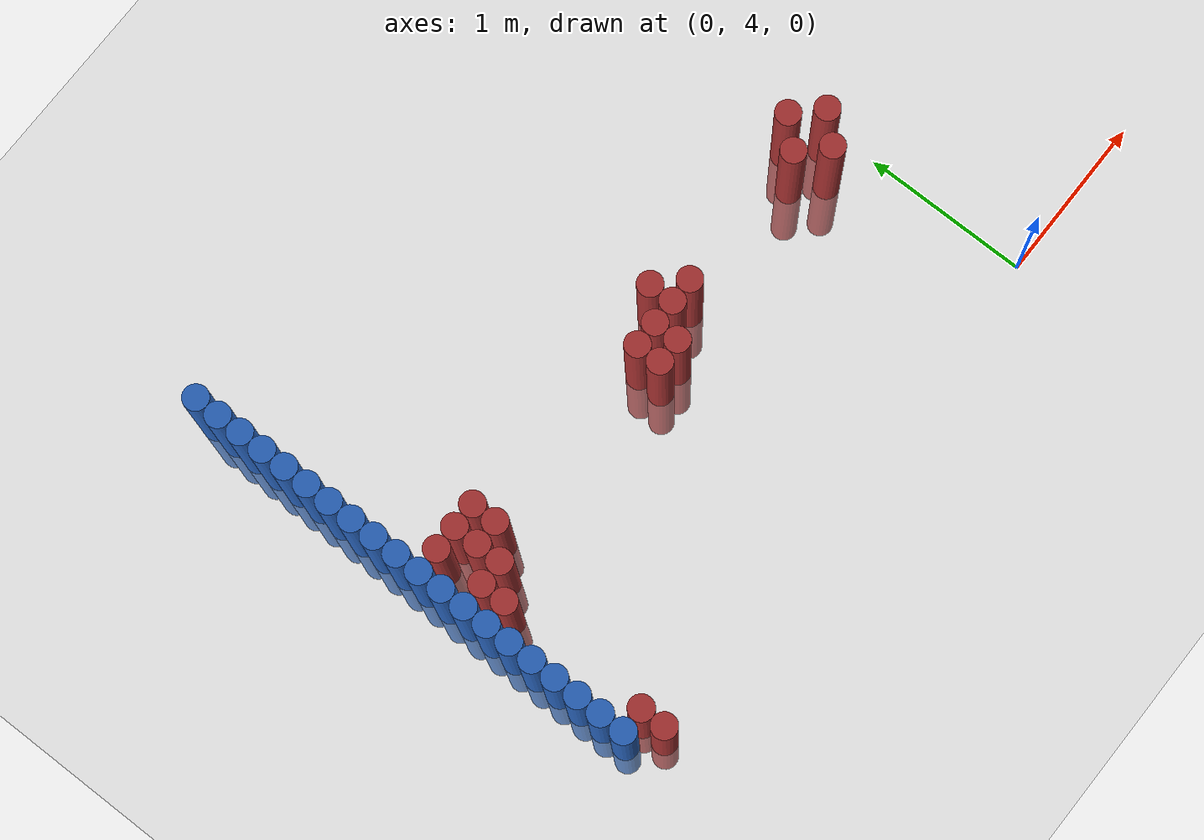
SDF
<sdf version="1.6">
 <world name="default">
  <model name="ground_plane">
   <static>1</static>
   <link name="link">
    <collision name="collision">
     <geometry><plane><normal>0 0 1</normal><size>100 100</size></plane></geometry>
     <surface><friction><ode><mu>100</mu><mu2>50</mu2></ode></friction></surface>
    </collision>
    <visual name="visual">
     <cast_shadows>0</cast_shadows>
     <geometry><plane><normal>0 0 1</normal><size>100 100</size></plane></geometry>
     <material>
      <script><uri>file://media/materials/scripts/gazebo.material</uri><name>Gazebo/Grey</name></script>
     </material>
    </visual>
   </link>
  </model>
  <model name="unit_cylinder_169">
   <static>1</static>
   <pose>-3.425000 4.075000 0.000000 0.000000 0.000000 0.000000</pose>
   <link name="link">
    <inertial>
     <mass>1</mass>
     <inertia><ixx>0.145833</ixx><ixy>0</ixy><ixz>0</ixz><iyy>0.145833</iyy><iyz>0</iyz><izz>0.125</izz></inertia>
    </inertial>
    <collision name="collision">
     <geometry><cylinder><radius>0.075000</radius><length>1.5</length></cylinder></geometry>
    </collision>
    <visual name="visual">
     <geometry><cylinder><radius>0.075000</radius><length>1.5</length></cylinder></geometry>
     <material>
      <ambient>0.152000 0.379000 0.720000 1</ambient>
      <diffuse>0.152000 0.379000 0.720000 1</diffuse>
     </material>
     <material>
      <script><name>Gazebo/Grey</name><uri>file://media/materials/scripts/gazebo.material</uri></script>
     </material>
    </visual>
   </link>
  </model>
  <model name="unit_cylinder_171">
   <static>1</static>
   <pose>-3.425000 4.225000 0.000000 0.000000 0.000000 0.000000</pose>
   <link name="link">
    <inertial>
     <mass>1</mass>
     <inertia><ixx>0.145833</ixx><ixy>0</ixy><ixz>0</ixz><iyy>0.145833</iyy><iyz>0</iyz><izz>0.125</izz></inertia>
    </inertial>
    <collision name="collision">
     <geometry><cylinder><radius>0.075000</radius><length>1.5</length></cylinder></geometry>
    </collision>
    <visual name="visual">
     <geometry><cylinder><radius>0.075000</radius><length>1.5</length></cylinder></geometry>
     <material>
      <ambient>0.152000 0.379000 0.720000 1</ambient>
      <diffuse>0.152000 0.379000 0.720000 1</diffuse>
     </material>
     <material>
      <script><name>Gazebo/Grey</name><uri>file://media/materials/scripts/gazebo.material</uri></script>
     </material>
    </visual>
   </link>
  </model>
  <model name="unit_cylinder_173">
   <static>1</static>
   <pose>-3.425000 4.375000 0.000000 0.000000 0.000000 0.000000</pose>
   <link name="link">
    <inertial>
     <mass>1</mass>
     <inertia><ixx>0.145833</ixx><ixy>0</ixy><ixz>0</ixz><iyy>0.145833</iyy><iyz>0</iyz><izz>0.125</izz></inertia>
    </inertial>
    <collision name="collision">
     <geometry><cylinder><radius>0.075000</radius><length>1.5</length></cylinder></geometry>
    </collision>
    <visual name="visual">
     <geometry><cylinder><radius>0.075000</radius><length>1.5</length></cylinder></geometry>
     <material>
      <ambient>0.152000 0.379000 0.720000 1</ambient>
      <diffuse>0.152000 0.379000 0.720000 1</diffuse>
     </material>
     <material>
      <script><name>Gazebo/Grey</name><uri>file://media/materials/scripts/gazebo.material</uri></script>
     </material>
    </visual>
   </link>
  </model>
  <model name="unit_cylinder_175">
   <static>1</static>
   <pose>-3.425000 4.525000 0.000000 0.000000 0.000000 0.000000</pose>
   <link name="link">
    <inertial>
     <mass>1</mass>
     <inertia><ixx>0.145833</ixx><ixy>0</ixy><ixz>0</ixz><iyy>0.145833</iyy><iyz>0</iyz><izz>0.125</izz></inertia>
    </inertial>
    <collision name="collision">
     <geometry><cylinder><radius>0.075000</radius><length>1.5</length></cylinder></geometry>
    </collision>
    <visual name="visual">
     <geometry><cylinder><radius>0.075000</radius><length>1.5</length></cylinder></geometry>
     <material>
      <ambient>0.152000 0.379000 0.720000 1</ambient>
      <diffuse>0.152000 0.379000 0.720000 1</diffuse>
     </material>
     <material>
      <script><name>Gazebo/Grey</name><uri>file://media/materials/scripts/gazebo.material</uri></script>
     </material>
    </visual>
   </link>
  </model>
  <model name="unit_cylinder_177">
   <static>1</static>
   <pose>-3.425000 4.675000 0.000000 0.000000 0.000000 0.000000</pose>
   <link name="link">
    <inertial>
     <mass>1</mass>
     <inertia><ixx>0.145833</ixx><ixy>0</ixy><ixz>0</ixz><iyy>0.145833</iyy><iyz>0</iyz><izz>0.125</izz></inertia>
    </inertial>
    <collision name="collision">
     <geometry><cylinder><radius>0.075000</radius><length>1.5</length></cylinder></geometry>
    </collision>
    <visual name="visual">
     <geometry><cylinder><radius>0.075000</radius><length>1.5</length></cylinder></geometry>
     <material>
      <ambient>0.152000 0.379000 0.720000 1</ambient>
      <diffuse>0.152000 0.379000 0.720000 1</diffuse>
     </material>
     <material>
      <script><name>Gazebo/Grey</name><uri>file://media/materials/scripts/gazebo.material</uri></script>
     </material>
    </visual>
   </link>
  </model>
  <model name="unit_cylinder_179">
   <static>1</static>
   <pose>-3.425000 4.825000 0.000000 0.000000 0.000000 0.000000</pose>
   <link name="link">
    <inertial>
     <mass>1</mass>
     <inertia><ixx>0.145833</ixx><ixy>0</ixy><ixz>0</ixz><iyy>0.145833</iyy><iyz>0</iyz><izz>0.125</izz></inertia>
    </inertial>
    <collision name="collision">
     <geometry><cylinder><radius>0.075000</radius><length>1.5</length></cylinder></geometry>
    </collision>
    <visual name="visual">
     <geometry><cylinder><radius>0.075000</radius><length>1.5</length></cylinder></geometry>
     <material>
      <ambient>0.152000 0.379000 0.720000 1</ambient>
      <diffuse>0.152000 0.379000 0.720000 1</diffuse>
     </material>
     <material>
      <script><name>Gazebo/Grey</name><uri>file://media/materials/scripts/gazebo.material</uri></script>
     </material>
    </visual>
   </link>
  </model>
  <model name="unit_cylinder_181">
   <static>1</static>
   <pose>-3.425000 4.975000 0.000000 0.000000 0.000000 0.000000</pose>
   <link name="link">
    <inertial>
     <mass>1</mass>
     <inertia><ixx>0.145833</ixx><ixy>0</ixy><ixz>0</ixz><iyy>0.145833</iyy><iyz>0</iyz><izz>0.125</izz></inertia>
    </inertial>
    <collision name="collision">
     <geometry><cylinder><radius>0.075000</radius><length>1.5</length></cylinder></geometry>
    </collision>
    <visual name="visual">
     <geometry><cylinder><radius>0.075000</radius><length>1.5</length></cylinder></geometry>
     <material>
      <ambient>0.152000 0.379000 0.720000 1</ambient>
      <diffuse>0.152000 0.379000 0.720000 1</diffuse>
     </material>
     <material>
      <script><name>Gazebo/Grey</name><uri>file://media/materials/scripts/gazebo.material</uri></script>
     </material>
    </visual>
   </link>
  </model>
  <model name="unit_cylinder_183">
   <static>1</static>
   <pose>-3.425000 5.125000 0.000000 0.000000 0.000000 0.000000</pose>
   <link name="link">
    <inertial>
     <mass>1</mass>
     <inertia><ixx>0.145833</ixx><ixy>0</ixy><ixz>0</ixz><iyy>0.145833</iyy><iyz>0</iyz><izz>0.125</izz></inertia>
    </inertial>
    <collision name="collision">
     <geometry><cylinder><radius>0.075000</radius><length>1.5</length></cylinder></geometry>
    </collision>
    <visual name="visual">
     <geometry><cylinder><radius>0.075000</radius><length>1.5</length></cylinder></geometry>
     <material>
      <ambient>0.152000 0.379000 0.720000 1</ambient>
      <diffuse>0.152000 0.379000 0.720000 1</diffuse>
     </material>
     <material>
      <script><name>Gazebo/Grey</name><uri>file://media/materials/scripts/gazebo.material</uri></script>
     </material>
    </visual>
   </link>
  </model>
  <model name="unit_cylinder_185">
   <static>1</static>
   <pose>-3.425000 5.275000 0.000000 0.000000 0.000000 0.000000</pose>
   <link name="link">
    <inertial>
     <mass>1</mass>
     <inertia><ixx>0.145833</ixx><ixy>0</ixy><ixz>0</ixz><iyy>0.145833</iyy><iyz>0</iyz><izz>0.125</izz></inertia>
    </inertial>
    <collision name="collision">
     <geometry><cylinder><radius>0.075000</radius><length>1.5</length></cylinder></geometry>
    </collision>
    <visual name="visual">
     <geometry><cylinder><radius>0.075000</radius><length>1.5</length></cylinder></geometry>
     <material>
      <ambient>0.152000 0.379000 0.720000 1</ambient>
      <diffuse>0.152000 0.379000 0.720000 1</diffuse>
     </material>
     <material>
      <script><name>Gazebo/Grey</name><uri>file://media/materials/scripts/gazebo.material</uri></script>
     </material>
    </visual>
   </link>
  </model>
  <model name="unit_cylinder_187">
   <static>1</static>
   <pose>-3.425000 5.425000 0.000000 0.000000 0.000000 0.000000</pose>
   <link name="link">
    <inertial>
     <mass>1</mass>
     <inertia><ixx>0.145833</ixx><ixy>0</ixy><ixz>0</ixz><iyy>0.145833</iyy><iyz>0</iyz><izz>0.125</izz></inertia>
    </inertial>
    <collision name="collision">
     <geometry><cylinder><radius>0.075000</radius><length>1.5</length></cylinder></geometry>
    </collision>
    <visual name="visual">
     <geometry><cylinder><radius>0.075000</radius><length>1.5</length></cylinder></geometry>
     <material>
      <ambient>0.152000 0.379000 0.720000 1</ambient>
      <diffuse>0.152000 0.379000 0.720000 1</diffuse>
     </material>
     <material>
      <script><name>Gazebo/Grey</name><uri>file://media/materials/scripts/gazebo.material</uri></script>
     </material>
    </visual>
   </link>
  </model>
  <model name="unit_cylinder_189">
   <static>1</static>
   <pose>-3.425000 5.575000 0.000000 0.000000 0.000000 0.000000</pose>
   <link name="link">
    <inertial>
     <mass>1</mass>
     <inertia><ixx>0.145833</ixx><ixy>0</ixy><ixz>0</ixz><iyy>0.145833</iyy><iyz>0</iyz><izz>0.125</izz></inertia>
    </inertial>
    <collision name="collision">
     <geometry><cylinder><radius>0.075000</radius><length>1.5</length></cylinder></geometry>
    </collision>
    <visual name="visual">
     <geometry><cylinder><radius>0.075000</radius><length>1.5</length></cylinder></geometry>
     <material>
      <ambient>0.152000 0.379000 0.720000 1</ambient>
      <diffuse>0.152000 0.379000 0.720000 1</diffuse>
     </material>
     <material>
      <script><name>Gazebo/Grey</name><uri>file://media/materials/scripts/gazebo.material</uri></script>
     </material>
    </visual>
   </link>
  </model>
  <model name="unit_cylinder_191">
   <static>1</static>
   <pose>-3.425000 5.725000 0.000000 0.000000 0.000000 0.000000</pose>
   <link name="link">
    <inertial>
     <mass>1</mass>
     <inertia><ixx>0.145833</ixx><ixy>0</ixy><ixz>0</ixz><iyy>0.145833</iyy><iyz>0</iyz><izz>0.125</izz></inertia>
    </inertial>
    <collision name="collision">
     <geometry><cylinder><radius>0.075000</radius><length>1.5</length></cylinder></geometry>
    </collision>
    <visual name="visual">
     <geometry><cylinder><radius>0.075000</radius><length>1.5</length></cylinder></geometry>
     <material>
      <ambient>0.152000 0.379000 0.720000 1</ambient>
      <diffuse>0.152000 0.379000 0.720000 1</diffuse>
     </material>
     <material>
      <script><name>Gazebo/Grey</name><uri>file://media/materials/scripts/gazebo.material</uri></script>
     </material>
    </visual>
   </link>
  </model>
  <model name="unit_cylinder_193">
   <static>1</static>
   <pose>-3.425000 5.875000 0.000000 0.000000 0.000000 0.000000</pose>
   <link name="link">
    <inertial>
     <mass>1</mass>
     <inertia><ixx>0.145833</ixx><ixy>0</ixy><ixz>0</ixz><iyy>0.145833</iyy><iyz>0</iyz><izz>0.125</izz></inertia>
    </inertial>
    <collision name="collision">
     <geometry><cylinder><radius>0.075000</radius><length>1.5</length></cylinder></geometry>
    </collision>
    <visual name="visual">
     <geometry><cylinder><radius>0.075000</radius><length>1.5</length></cylinder></geometry>
     <material>
      <ambient>0.152000 0.379000 0.720000 1</ambient>
      <diffuse>0.152000 0.379000 0.720000 1</diffuse>
     </material>
     <material>
      <script><name>Gazebo/Grey</name><uri>file://media/materials/scripts/gazebo.material</uri></script>
     </material>
    </visual>
   </link>
  </model>
  <model name="unit_cylinder_195">
   <static>1</static>
   <pose>-3.425000 6.025000 0.000000 0.000000 0.000000 0.000000</pose>
   <link name="link">
    <inertial>
     <mass>1</mass>
     <inertia><ixx>0.145833</ixx><ixy>0</ixy><ixz>0</ixz><iyy>0.145833</iyy><iyz>0</iyz><izz>0.125</izz></inertia>
    </inertial>
    <collision name="collision">
     <geometry><cylinder><radius>0.075000</radius><length>1.5</length></cylinder></geometry>
    </collision>
    <visual name="visual">
     <geometry><cylinder><radius>0.075000</radius><length>1.5</length></cylinder></geometry>
     <material>
      <ambient>0.152000 0.379000 0.720000 1</ambient>
      <diffuse>0.152000 0.379000 0.720000 1</diffuse>
     </material>
     <material>
      <script><name>Gazebo/Grey</name><uri>file://media/materials/scripts/gazebo.material</uri></script>
     </material>
    </visual>
   </link>
  </model>
  <model name="unit_cylinder_197">
   <static>1</static>
   <pose>-3.425000 6.175000 0.000000 0.000000 0.000000 0.000000</pose>
   <link name="link">
    <inertial>
     <mass>1</mass>
     <inertia><ixx>0.145833</ixx><ixy>0</ixy><ixz>0</ixz><iyy>0.145833</iyy><iyz>0</iyz><izz>0.125</izz></inertia>
    </inertial>
    <collision name="collision">
     <geometry><cylinder><radius>0.075000</radius><length>1.5</length></cylinder></geometry>
    </collision>
    <visual name="visual">
     <geometry><cylinder><radius>0.075000</radius><length>1.5</length></cylinder></geometry>
     <material>
      <ambient>0.152000 0.379000 0.720000 1</ambient>
      <diffuse>0.152000 0.379000 0.720000 1</diffuse>
     </material>
     <material>
      <script><name>Gazebo/Grey</name><uri>file://media/materials/scripts/gazebo.material</uri></script>
     </material>
    </visual>
   </link>
  </model>
  <model name="unit_cylinder_199">
   <static>1</static>
   <pose>-3.425000 6.325000 0.000000 0.000000 0.000000 0.000000</pose>
   <link name="link">
    <inertial>
     <mass>1</mass>
     <inertia><ixx>0.145833</ixx><ixy>0</ixy><ixz>0</ixz><iyy>0.145833</iyy><iyz>0</iyz><izz>0.125</izz></inertia>
    </inertial>
    <collision name="collision">
     <geometry><cylinder><radius>0.075000</radius><length>1.5</length></cylinder></geometry>
    </collision>
    <visual name="visual">
     <geometry><cylinder><radius>0.075000</radius><length>1.5</length></cylinder></geometry>
     <material>
      <ambient>0.152000 0.379000 0.720000 1</ambient>
      <diffuse>0.152000 0.379000 0.720000 1</diffuse>
     </material>
     <material>
      <script><name>Gazebo/Grey</name><uri>file://media/materials/scripts/gazebo.material</uri></script>
     </material>
    </visual>
   </link>
  </model>
  <model name="unit_cylinder_201">
   <static>1</static>
   <pose>-3.425000 6.475000 0.000000 0.000000 0.000000 0.000000</pose>
   <link name="link">
    <inertial>
     <mass>1</mass>
     <inertia><ixx>0.145833</ixx><ixy>0</ixy><ixz>0</ixz><iyy>0.145833</iyy><iyz>0</iyz><izz>0.125</izz></inertia>
    </inertial>
    <collision name="collision">
     <geometry><cylinder><radius>0.075000</radius><length>1.5</length></cylinder></geometry>
    </collision>
    <visual name="visual">
     <geometry><cylinder><radius>0.075000</radius><length>1.5</length></cylinder></geometry>
     <material>
      <ambient>0.152000 0.379000 0.720000 1</ambient>
      <diffuse>0.152000 0.379000 0.720000 1</diffuse>
     </material>
     <material>
      <script><name>Gazebo/Grey</name><uri>file://media/materials/scripts/gazebo.material</uri></script>
     </material>
    </visual>
   </link>
  </model>
  <model name="unit_cylinder_203">
   <static>1</static>
   <pose>-3.425000 6.625000 0.000000 0.000000 0.000000 0.000000</pose>
   <link name="link">
    <inertial>
     <mass>1</mass>
     <inertia><ixx>0.145833</ixx><ixy>0</ixy><ixz>0</ixz><iyy>0.145833</iyy><iyz>0</iyz><izz>0.125</izz></inertia>
    </inertial>
    <collision name="collision">
     <geometry><cylinder><radius>0.075000</radius><length>1.5</length></cylinder></geometry>
    </collision>
    <visual name="visual">
     <geometry><cylinder><radius>0.075000</radius><length>1.5</length></cylinder></geometry>
     <material>
      <ambient>0.152000 0.379000 0.720000 1</ambient>
      <diffuse>0.152000 0.379000 0.720000 1</diffuse>
     </material>
     <material>
      <script><name>Gazebo/Grey</name><uri>file://media/materials/scripts/gazebo.material</uri></script>
     </material>
    </visual>
   </link>
  </model>
  <model name="unit_cylinder_205">
   <static>1</static>
   <pose>-3.425000 6.775000 0.000000 0.000000 0.000000 0.000000</pose>
   <link name="link">
    <inertial>
     <mass>1</mass>
     <inertia><ixx>0.145833</ixx><ixy>0</ixy><ixz>0</ixz><iyy>0.145833</iyy><iyz>0</iyz><izz>0.125</izz></inertia>
    </inertial>
    <collision name="collision">
     <geometry><cylinder><radius>0.075000</radius><length>1.5</length></cylinder></geometry>
    </collision>
    <visual name="visual">
     <geometry><cylinder><radius>0.075000</radius><length>1.5</length></cylinder></geometry>
     <material>
      <ambient>0.152000 0.379000 0.720000 1</ambient>
      <diffuse>0.152000 0.379000 0.720000 1</diffuse>
     </material>
     <material>
      <script><name>Gazebo/Grey</name><uri>file://media/materials/scripts/gazebo.material</uri></script>
     </material>
    </visual>
   </link>
  </model>
  <model name="unit_cylinder_207">
   <static>1</static>
   <pose>-3.425000 6.925000 0.000000 0.000000 0.000000 0.000000</pose>
   <link name="link">
    <inertial>
     <mass>1</mass>
     <inertia><ixx>0.145833</ixx><ixy>0</ixy><ixz>0</ixz><iyy>0.145833</iyy><iyz>0</iyz><izz>0.125</izz></inertia>
    </inertial>
    <collision name="collision">
     <geometry><cylinder><radius>0.075000</radius><length>1.5</length></cylinder></geometry>
    </collision>
    <visual name="visual">
     <geometry><cylinder><radius>0.075000</radius><length>1.5</length></cylinder></geometry>
     <material>
      <ambient>0.152000 0.379000 0.720000 1</ambient>
      <diffuse>0.152000 0.379000 0.720000 1</diffuse>
     </material>
     <material>
      <script><name>Gazebo/Grey</name><uri>file://media/materials/scripts/gazebo.material</uri></script>
     </material>
    </visual>
   </link>
  </model>
  <model name="unit_cylinder_248">
   <static>1</static>
   <pose>-3.425000 4.075000 0.000000 0.000000 0.000000 0.000000</pose>
   <link name="link">
    <inertial>
     <mass>1</mass>
     <inertia><ixx>0.145833</ixx><ixy>0</ixy><ixz>0</ixz><iyy>0.145833</iyy><iyz>0</iyz><izz>0.125</izz></inertia>
    </inertial>
    <collision name="collision">
     <geometry><cylinder><radius>0.075000</radius><length>1.5</length></cylinder></geometry>
    </collision>
    <visual name="visual">
     <geometry><cylinder><radius>0.075000</radius><length>1.5</length></cylinder></geometry>
     <material>
      <ambient>0.152000 0.379000 0.720000 1</ambient>
      <diffuse>0.152000 0.379000 0.720000 1</diffuse>
     </material>
     <material>
      <script><name>Gazebo/Grey</name><uri>file://media/materials/scripts/gazebo.material</uri></script>
     </material>
    </visual>
   </link>
  </model>
  <model name="unit_cylinder_249">
   <static>1</static>
   <pose>-3.425000 4.225000 0.000000 0.000000 0.000000 0.000000</pose>
   <link name="link">
    <inertial>
     <mass>1</mass>
     <inertia><ixx>0.145833</ixx><ixy>0</ixy><ixz>0</ixz><iyy>0.145833</iyy><iyz>0</iyz><izz>0.125</izz></inertia>
    </inertial>
    <collision name="collision">
     <geometry><cylinder><radius>0.075000</radius><length>1.5</length></cylinder></geometry>
    </collision>
    <visual name="visual">
     <geometry><cylinder><radius>0.075000</radius><length>1.5</length></cylinder></geometry>
     <material>
      <ambient>0.152000 0.379000 0.720000 1</ambient>
      <diffuse>0.152000 0.379000 0.720000 1</diffuse>
     </material>
     <material>
      <script><name>Gazebo/Grey</name><uri>file://media/materials/scripts/gazebo.material</uri></script>
     </material>
    </visual>
   </link>
  </model>
  <model name="unit_cylinder_250">
   <static>1</static>
   <pose>-3.425000 4.375000 0.000000 0.000000 0.000000 0.000000</pose>
   <link name="link">
    <inertial>
     <mass>1</mass>
     <inertia><ixx>0.145833</ixx><ixy>0</ixy><ixz>0</ixz><iyy>0.145833</iyy><iyz>0</iyz><izz>0.125</izz></inertia>
    </inertial>
    <collision name="collision">
     <geometry><cylinder><radius>0.075000</radius><length>1.5</length></cylinder></geometry>
    </collision>
    <visual name="visual">
     <geometry><cylinder><radius>0.075000</radius><length>1.5</length></cylinder></geometry>
     <material>
      <ambient>0.152000 0.379000 0.720000 1</ambient>
      <diffuse>0.152000 0.379000 0.720000 1</diffuse>
     </material>
     <material>
      <script><name>Gazebo/Grey</name><uri>file://media/materials/scripts/gazebo.material</uri></script>
     </material>
    </visual>
   </link>
  </model>
  <model name="unit_cylinder_251">
   <static>1</static>
   <pose>-3.425000 4.525000 0.000000 0.000000 0.000000 0.000000</pose>
   <link name="link">
    <inertial>
     <mass>1</mass>
     <inertia><ixx>0.145833</ixx><ixy>0</ixy><ixz>0</ixz><iyy>0.145833</iyy><iyz>0</iyz><izz>0.125</izz></inertia>
    </inertial>
    <collision name="collision">
     <geometry><cylinder><radius>0.075000</radius><length>1.5</length></cylinder></geometry>
    </collision>
    <visual name="visual">
     <geometry><cylinder><radius>0.075000</radius><length>1.5</length></cylinder></geometry>
     <material>
      <ambient>0.152000 0.379000 0.720000 1</ambient>
      <diffuse>0.152000 0.379000 0.720000 1</diffuse>
     </material>
     <material>
      <script><name>Gazebo/Grey</name><uri>file://media/materials/scripts/gazebo.material</uri></script>
     </material>
    </visual>
   </link>
  </model>
  <model name="unit_cylinder_252">
   <static>1</static>
   <pose>-3.425000 4.675000 0.000000 0.000000 0.000000 0.000000</pose>
   <link name="link">
    <inertial>
     <mass>1</mass>
     <inertia><ixx>0.145833</ixx><ixy>0</ixy><ixz>0</ixz><iyy>0.145833</iyy><iyz>0</iyz><izz>0.125</izz></inertia>
    </inertial>
    <collision name="collision">
     <geometry><cylinder><radius>0.075000</radius><length>1.5</length></cylinder></geometry>
    </collision>
    <visual name="visual">
     <geometry><cylinder><radius>0.075000</radius><length>1.5</length></cylinder></geometry>
     <material>
      <ambient>0.152000 0.379000 0.720000 1</ambient>
      <diffuse>0.152000 0.379000 0.720000 1</diffuse>
     </material>
     <material>
      <script><name>Gazebo/Grey</name><uri>file://media/materials/scripts/gazebo.material</uri></script>
     </material>
    </visual>
   </link>
  </model>
  <model name="unit_cylinder_253">
   <static>1</static>
   <pose>-3.425000 4.825000 0.000000 0.000000 0.000000 0.000000</pose>
   <link name="link">
    <inertial>
     <mass>1</mass>
     <inertia><ixx>0.145833</ixx><ixy>0</ixy><ixz>0</ixz><iyy>0.145833</iyy><iyz>0</iyz><izz>0.125</izz></inertia>
    </inertial>
    <collision name="collision">
     <geometry><cylinder><radius>0.075000</radius><length>1.5</length></cylinder></geometry>
    </collision>
    <visual name="visual">
     <geometry><cylinder><radius>0.075000</radius><length>1.5</length></cylinder></geometry>
     <material>
      <ambient>0.152000 0.379000 0.720000 1</ambient>
      <diffuse>0.152000 0.379000 0.720000 1</diffuse>
     </material>
     <material>
      <script><name>Gazebo/Grey</name><uri>file://media/materials/scripts/gazebo.material</uri></script>
     </material>
    </visual>
   </link>
  </model>
  <model name="unit_cylinder_254">
   <static>1</static>
   <pose>-3.425000 4.975000 0.000000 0.000000 0.000000 0.000000</pose>
   <link name="link">
    <inertial>
     <mass>1</mass>
     <inertia><ixx>0.145833</ixx><ixy>0</ixy><ixz>0</ixz><iyy>0.145833</iyy><iyz>0</iyz><izz>0.125</izz></inertia>
    </inertial>
    <collision name="collision">
     <geometry><cylinder><radius>0.075000</radius><length>1.5</length></cylinder></geometry>
    </collision>
    <visual name="visual">
     <geometry><cylinder><radius>0.075000</radius><length>1.5</length></cylinder></geometry>
     <material>
      <ambient>0.152000 0.379000 0.720000 1</ambient>
      <diffuse>0.152000 0.379000 0.720000 1</diffuse>
     </material>
     <material>
      <script><name>Gazebo/Grey</name><uri>file://media/materials/scripts/gazebo.material</uri></script>
     </material>
    </visual>
   </link>
  </model>
  <model name="unit_cylinder_255">
   <static>1</static>
   <pose>-3.425000 5.125000 0.000000 0.000000 0.000000 0.000000</pose>
   <link name="link">
    <inertial>
     <mass>1</mass>
     <inertia><ixx>0.145833</ixx><ixy>0</ixy><ixz>0</ixz><iyy>0.145833</iyy><iyz>0</iyz><izz>0.125</izz></inertia>
    </inertial>
    <collision name="collision">
     <geometry><cylinder><radius>0.075000</radius><length>1.5</length></cylinder></geometry>
    </collision>
    <visual name="visual">
     <geometry><cylinder><radius>0.075000</radius><length>1.5</length></cylinder></geometry>
     <material>
      <ambient>0.152000 0.379000 0.720000 1</ambient>
      <diffuse>0.152000 0.379000 0.720000 1</diffuse>
     </material>
     <material>
      <script><name>Gazebo/Grey</name><uri>file://media/materials/scripts/gazebo.material</uri></script>
     </material>
    </visual>
   </link>
  </model>
  <model name="unit_cylinder_256">
   <static>1</static>
   <pose>-3.425000 5.275000 0.000000 0.000000 0.000000 0.000000</pose>
   <link name="link">
    <inertial>
     <mass>1</mass>
     <inertia><ixx>0.145833</ixx><ixy>0</ixy><ixz>0</ixz><iyy>0.145833</iyy><iyz>0</iyz><izz>0.125</izz></inertia>
    </inertial>
    <collision name="collision">
     <geometry><cylinder><radius>0.075000</radius><length>1.5</length></cylinder></geometry>
    </collision>
    <visual name="visual">
     <geometry><cylinder><radius>0.075000</radius><length>1.5</length></cylinder></geometry>
     <material>
      <ambient>0.152000 0.379000 0.720000 1</ambient>
      <diffuse>0.152000 0.379000 0.720000 1</diffuse>
     </material>
     <material>
      <script><name>Gazebo/Grey</name><uri>file://media/materials/scripts/gazebo.material</uri></script>
     </material>
    </visual>
   </link>
  </model>
  <model name="unit_cylinder_257">
   <static>1</static>
   <pose>-3.425000 5.425000 0.000000 0.000000 0.000000 0.000000</pose>
   <link name="link">
    <inertial>
     <mass>1</mass>
     <inertia><ixx>0.145833</ixx><ixy>0</ixy><ixz>0</ixz><iyy>0.145833</iyy><iyz>0</iyz><izz>0.125</izz></inertia>
    </inertial>
    <collision name="collision">
     <geometry><cylinder><radius>0.075000</radius><length>1.5</length></cylinder></geometry>
    </collision>
    <visual name="visual">
     <geometry><cylinder><radius>0.075000</radius><length>1.5</length></cylinder></geometry>
     <material>
      <ambient>0.152000 0.379000 0.720000 1</ambient>
      <diffuse>0.152000 0.379000 0.720000 1</diffuse>
     </material>
     <material>
      <script><name>Gazebo/Grey</name><uri>file://media/materials/scripts/gazebo.material</uri></script>
     </material>
    </visual>
   </link>
  </model>
  <model name="unit_cylinder_273">
   <static>1</static>
   <pose>-3.275000 3.925000 0.000000 0.000000 0.000000 0.000000</pose>
   <link name="link">
    <inertial>
     <mass>1</mass>
     <inertia><ixx>0.145833</ixx><ixy>0</ixy><ixz>0</ixz><iyy>0.145833</iyy><iyz>0</iyz><izz>0.125</izz></inertia>
    </inertial>
    <collision name="collision">
     <geometry><cylinder><radius>0.075000</radius><length>1.5</length></cylinder></geometry>
    </collision>
    <visual name="visual">
     <geometry><cylinder><radius>0.075000</radius><length>1.5</length></cylinder></geometry>
     <material>
      <ambient>0.648000 0.192000 0.192000 1</ambient>
      <diffuse>0.648000 0.192000 0.192000 1</diffuse>
     </material>
     <material>
      <script><name>Gazebo/Grey</name><uri>file://media/materials/scripts/gazebo.material</uri></script>
     </material>
    </visual>
   </link>
  </model>
  <model name="unit_cylinder_274">
   <static>1</static>
   <pose>-3.275000 4.075000 0.000000 0.000000 0.000000 0.000000</pose>
   <link name="link">
    <inertial>
     <mass>1</mass>
     <inertia><ixx>0.145833</ixx><ixy>0</ixy><ixz>0</ixz><iyy>0.145833</iyy><iyz>0</iyz><izz>0.125</izz></inertia>
    </inertial>
    <collision name="collision">
     <geometry><cylinder><radius>0.075000</radius><length>1.5</length></cylinder></geometry>
    </collision>
    <visual name="visual">
     <geometry><cylinder><radius>0.075000</radius><length>1.5</length></cylinder></geometry>
     <material>
      <ambient>0.648000 0.192000 0.192000 1</ambient>
      <diffuse>0.648000 0.192000 0.192000 1</diffuse>
     </material>
     <material>
      <script><name>Gazebo/Grey</name><uri>file://media/materials/scripts/gazebo.material</uri></script>
     </material>
    </visual>
   </link>
  </model>
  <model name="unit_cylinder_275">
   <static>1</static>
   <pose>-3.275000 4.975000 0.000000 0.000000 0.000000 0.000000</pose>
   <link name="link">
    <inertial>
     <mass>1</mass>
     <inertia><ixx>0.145833</ixx><ixy>0</ixy><ixz>0</ixz><iyy>0.145833</iyy><iyz>0</iyz><izz>0.125</izz></inertia>
    </inertial>
    <collision name="collision">
     <geometry><cylinder><radius>0.075000</radius><length>1.5</length></cylinder></geometry>
    </collision>
    <visual name="visual">
     <geometry><cylinder><radius>0.075000</radius><length>1.5</length></cylinder></geometry>
     <material>
      <ambient>0.648000 0.192000 0.192000 1</ambient>
      <diffuse>0.648000 0.192000 0.192000 1</diffuse>
     </material>
     <material>
      <script><name>Gazebo/Grey</name><uri>file://media/materials/scripts/gazebo.material</uri></script>
     </material>
    </visual>
   </link>
  </model>
  <model name="unit_cylinder_276">
   <static>1</static>
   <pose>-3.275000 5.125000 0.000000 0.000000 0.000000 0.000000</pose>
   <link name="link">
    <inertial>
     <mass>1</mass>
     <inertia><ixx>0.145833</ixx><ixy>0</ixy><ixz>0</ixz><iyy>0.145833</iyy><iyz>0</iyz><izz>0.125</izz></inertia>
    </inertial>
    <collision name="collision">
     <geometry><cylinder><radius>0.075000</radius><length>1.5</length></cylinder></geometry>
    </collision>
    <visual name="visual">
     <geometry><cylinder><radius>0.075000</radius><length>1.5</length></cylinder></geometry>
     <material>
      <ambient>0.648000 0.192000 0.192000 1</ambient>
      <diffuse>0.648000 0.192000 0.192000 1</diffuse>
     </material>
     <material>
      <script><name>Gazebo/Grey</name><uri>file://media/materials/scripts/gazebo.material</uri></script>
     </material>
    </visual>
   </link>
  </model>
  <model name="unit_cylinder_277">
   <static>1</static>
   <pose>-3.275000 5.425000 0.000000 0.000000 0.000000 0.000000</pose>
   <link name="link">
    <inertial>
     <mass>1</mass>
     <inertia><ixx>0.145833</ixx><ixy>0</ixy><ixz>0</ixz><iyy>0.145833</iyy><iyz>0</iyz><izz>0.125</izz></inertia>
    </inertial>
    <collision name="collision">
     <geometry><cylinder><radius>0.075000</radius><length>1.5</length></cylinder></geometry>
    </collision>
    <visual name="visual">
     <geometry><cylinder><radius>0.075000</radius><length>1.5</length></cylinder></geometry>
     <material>
      <ambient>0.648000 0.192000 0.192000 1</ambient>
      <diffuse>0.648000 0.192000 0.192000 1</diffuse>
     </material>
     <material>
      <script><name>Gazebo/Grey</name><uri>file://media/materials/scripts/gazebo.material</uri></script>
     </material>
    </visual>
   </link>
  </model>
  <model name="unit_cylinder_280">
   <static>1</static>
   <pose>-3.125000 5.125000 0.000000 0.000000 0.000000 0.000000</pose>
   <link name="link">
    <inertial>
     <mass>1</mass>
     <inertia><ixx>0.145833</ixx><ixy>0</ixy><ixz>0</ixz><iyy>0.145833</iyy><iyz>0</iyz><izz>0.125</izz></inertia>
    </inertial>
    <collision name="collision">
     <geometry><cylinder><radius>0.075000</radius><length>1.5</length></cylinder></geometry>
    </collision>
    <visual name="visual">
     <geometry><cylinder><radius>0.075000</radius><length>1.5</length></cylinder></geometry>
     <material>
      <ambient>0.648000 0.192000 0.192000 1</ambient>
      <diffuse>0.648000 0.192000 0.192000 1</diffuse>
     </material>
     <material>
      <script><name>Gazebo/Grey</name><uri>file://media/materials/scripts/gazebo.material</uri></script>
     </material>
    </visual>
   </link>
  </model>
  <model name="unit_cylinder_281">
   <static>1</static>
   <pose>-3.125000 5.275000 0.000000 0.000000 0.000000 0.000000</pose>
   <link name="link">
    <inertial>
     <mass>1</mass>
     <inertia><ixx>0.145833</ixx><ixy>0</ixy><ixz>0</ixz><iyy>0.145833</iyy><iyz>0</iyz><izz>0.125</izz></inertia>
    </inertial>
    <collision name="collision">
     <geometry><cylinder><radius>0.075000</radius><length>1.5</length></cylinder></geometry>
    </collision>
    <visual name="visual">
     <geometry><cylinder><radius>0.075000</radius><length>1.5</length></cylinder></geometry>
     <material>
      <ambient>0.648000 0.192000 0.192000 1</ambient>
      <diffuse>0.648000 0.192000 0.192000 1</diffuse>
     </material>
     <material>
      <script><name>Gazebo/Grey</name><uri>file://media/materials/scripts/gazebo.material</uri></script>
     </material>
    </visual>
   </link>
  </model>
  <model name="unit_cylinder_282">
   <static>1</static>
   <pose>-3.125000 5.425000 0.000000 0.000000 0.000000 0.000000</pose>
   <link name="link">
    <inertial>
     <mass>1</mass>
     <inertia><ixx>0.145833</ixx><ixy>0</ixy><ixz>0</ixz><iyy>0.145833</iyy><iyz>0</iyz><izz>0.125</izz></inertia>
    </inertial>
    <collision name="collision">
     <geometry><cylinder><radius>0.075000</radius><length>1.5</length></cylinder></geometry>
    </collision>
    <visual name="visual">
     <geometry><cylinder><radius>0.075000</radius><length>1.5</length></cylinder></geometry>
     <material>
      <ambient>0.648000 0.192000 0.192000 1</ambient>
      <diffuse>0.648000 0.192000 0.192000 1</diffuse>
     </material>
     <material>
      <script><name>Gazebo/Grey</name><uri>file://media/materials/scripts/gazebo.material</uri></script>
     </material>
    </visual>
   </link>
  </model>
  <model name="unit_cylinder_286">
   <static>1</static>
   <pose>-2.975000 5.275000 0.000000 0.000000 0.000000 0.000000</pose>
   <link name="link">
    <inertial>
     <mass>1</mass>
     <inertia><ixx>0.145833</ixx><ixy>0</ixy><ixz>0</ixz><iyy>0.145833</iyy><iyz>0</iyz><izz>0.125</izz></inertia>
    </inertial>
    <collision name="collision">
     <geometry><cylinder><radius>0.075000</radius><length>1.5</length></cylinder></geometry>
    </collision>
    <visual name="visual">
     <geometry><cylinder><radius>0.075000</radius><length>1.5</length></cylinder></geometry>
     <material>
      <ambient>0.648000 0.192000 0.192000 1</ambient>
      <diffuse>0.648000 0.192000 0.192000 1</diffuse>
     </material>
     <material>
      <script><name>Gazebo/Grey</name><uri>file://media/materials/scripts/gazebo.material</uri></script>
     </material>
    </visual>
   </link>
  </model>
  <model name="unit_cylinder_287">
   <static>1</static>
   <pose>-2.975000 5.425000 0.000000 0.000000 0.000000 0.000000</pose>
   <link name="link">
    <inertial>
     <mass>1</mass>
     <inertia><ixx>0.145833</ixx><ixy>0</ixy><ixz>0</ixz><iyy>0.145833</iyy><iyz>0</iyz><izz>0.125</izz></inertia>
    </inertial>
    <collision name="collision">
     <geometry><cylinder><radius>0.075000</radius><length>1.5</length></cylinder></geometry>
    </collision>
    <visual name="visual">
     <geometry><cylinder><radius>0.075000</radius><length>1.5</length></cylinder></geometry>
     <material>
      <ambient>0.648000 0.192000 0.192000 1</ambient>
      <diffuse>0.648000 0.192000 0.192000 1</diffuse>
     </material>
     <material>
      <script><name>Gazebo/Grey</name><uri>file://media/materials/scripts/gazebo.material</uri></script>
     </material>
    </visual>
   </link>
  </model>
  <model name="unit_cylinder_305">
   <static>1</static>
   <pose>-1.775000 5.125000 0.000000 0.000000 0.000000 0.000000</pose>
   <link name="link">
    <inertial>
     <mass>1</mass>
     <inertia><ixx>0.145833</ixx><ixy>0</ixy><ixz>0</ixz><iyy>0.145833</iyy><iyz>0</iyz><izz>0.125</izz></inertia>
    </inertial>
    <collision name="collision">
     <geometry><cylinder><radius>0.075000</radius><length>1.5</length></cylinder></geometry>
    </collision>
    <visual name="visual">
     <geometry><cylinder><radius>0.075000</radius><length>1.5</length></cylinder></geometry>
     <material>
      <ambient>0.648000 0.192000 0.192000 1</ambient>
      <diffuse>0.648000 0.192000 0.192000 1</diffuse>
     </material>
     <material>
      <script><name>Gazebo/Grey</name><uri>file://media/materials/scripts/gazebo.material</uri></script>
     </material>
    </visual>
   </link>
  </model>
  <model name="unit_cylinder_306">
   <static>1</static>
   <pose>-1.775000 5.275000 0.000000 0.000000 0.000000 0.000000</pose>
   <link name="link">
    <inertial>
     <mass>1</mass>
     <inertia><ixx>0.145833</ixx><ixy>0</ixy><ixz>0</ixz><iyy>0.145833</iyy><iyz>0</iyz><izz>0.125</izz></inertia>
    </inertial>
    <collision name="collision">
     <geometry><cylinder><radius>0.075000</radius><length>1.5</length></cylinder></geometry>
    </collision>
    <visual name="visual">
     <geometry><cylinder><radius>0.075000</radius><length>1.5</length></cylinder></geometry>
     <material>
      <ambient>0.648000 0.192000 0.192000 1</ambient>
      <diffuse>0.648000 0.192000 0.192000 1</diffuse>
     </material>
     <material>
      <script><name>Gazebo/Grey</name><uri>file://media/materials/scripts/gazebo.material</uri></script>
     </material>
    </visual>
   </link>
  </model>
  <model name="unit_cylinder_307">
   <static>1</static>
   <pose>-1.625000 5.125000 0.000000 0.000000 0.000000 0.000000</pose>
   <link name="link">
    <inertial>
     <mass>1</mass>
     <inertia><ixx>0.145833</ixx><ixy>0</ixy><ixz>0</ixz><iyy>0.145833</iyy><iyz>0</iyz><izz>0.125</izz></inertia>
    </inertial>
    <collision name="collision">
     <geometry><cylinder><radius>0.075000</radius><length>1.5</length></cylinder></geometry>
    </collision>
    <visual name="visual">
     <geometry><cylinder><radius>0.075000</radius><length>1.5</length></cylinder></geometry>
     <material>
      <ambient>0.648000 0.192000 0.192000 1</ambient>
      <diffuse>0.648000 0.192000 0.192000 1</diffuse>
     </material>
     <material>
      <script><name>Gazebo/Grey</name><uri>file://media/materials/scripts/gazebo.material</uri></script>
     </material>
    </visual>
   </link>
  </model>
  <model name="unit_cylinder_308">
   <static>1</static>
   <pose>-1.625000 5.275000 0.000000 0.000000 0.000000 0.000000</pose>
   <link name="link">
    <inertial>
     <mass>1</mass>
     <inertia><ixx>0.145833</ixx><ixy>0</ixy><ixz>0</ixz><iyy>0.145833</iyy><iyz>0</iyz><izz>0.125</izz></inertia>
    </inertial>
    <collision name="collision">
     <geometry><cylinder><radius>0.075000</radius><length>1.5</length></cylinder></geometry>
    </collision>
    <visual name="visual">
     <geometry><cylinder><radius>0.075000</radius><length>1.5</length></cylinder></geometry>
     <material>
      <ambient>0.648000 0.192000 0.192000 1</ambient>
      <diffuse>0.648000 0.192000 0.192000 1</diffuse>
     </material>
     <material>
      <script><name>Gazebo/Grey</name><uri>file://media/materials/scripts/gazebo.material</uri></script>
     </material>
    </visual>
   </link>
  </model>
  <model name="unit_cylinder_309">
   <static>1</static>
   <pose>-1.475000 5.275000 0.000000 0.000000 0.000000 0.000000</pose>
   <link name="link">
    <inertial>
     <mass>1</mass>
     <inertia><ixx>0.145833</ixx><ixy>0</ixy><ixz>0</ixz><iyy>0.145833</iyy><iyz>0</iyz><izz>0.125</izz></inertia>
    </inertial>
    <collision name="collision">
     <geometry><cylinder><radius>0.075000</radius><length>1.5</length></cylinder></geometry>
    </collision>
    <visual name="visual">
     <geometry><cylinder><radius>0.075000</radius><length>1.5</length></cylinder></geometry>
     <material>
      <ambient>0.648000 0.192000 0.192000 1</ambient>
      <diffuse>0.648000 0.192000 0.192000 1</diffuse>
     </material>
     <material>
      <script><name>Gazebo/Grey</name><uri>file://media/materials/scripts/gazebo.material</uri></script>
     </material>
    </visual>
   </link>
  </model>
  <model name="unit_cylinder_310">
   <static>1</static>
   <pose>-1.475000 5.425000 0.000000 0.000000 0.000000 0.000000</pose>
   <link name="link">
    <inertial>
     <mass>1</mass>
     <inertia><ixx>0.145833</ixx><ixy>0</ixy><ixz>0</ixz><iyy>0.145833</iyy><iyz>0</iyz><izz>0.125</izz></inertia>
    </inertial>
    <collision name="collision">
     <geometry><cylinder><radius>0.075000</radius><length>1.5</length></cylinder></geometry>
    </collision>
    <visual name="visual">
     <geometry><cylinder><radius>0.075000</radius><length>1.5</length></cylinder></geometry>
     <material>
      <ambient>0.648000 0.192000 0.192000 1</ambient>
      <diffuse>0.648000 0.192000 0.192000 1</diffuse>
     </material>
     <material>
      <script><name>Gazebo/Grey</name><uri>file://media/materials/scripts/gazebo.material</uri></script>
     </material>
    </visual>
   </link>
  </model>
  <model name="unit_cylinder_311">
   <static>1</static>
   <pose>-1.325000 5.275000 0.000000 0.000000 0.000000 0.000000</pose>
   <link name="link">
    <inertial>
     <mass>1</mass>
     <inertia><ixx>0.145833</ixx><ixy>0</ixy><ixz>0</ixz><iyy>0.145833</iyy><iyz>0</iyz><izz>0.125</izz></inertia>
    </inertial>
    <collision name="collision">
     <geometry><cylinder><radius>0.075000</radius><length>1.5</length></cylinder></geometry>
    </collision>
    <visual name="visual">
     <geometry><cylinder><radius>0.075000</radius><length>1.5</length></cylinder></geometry>
     <material>
      <ambient>0.648000 0.192000 0.192000 1</ambient>
      <diffuse>0.648000 0.192000 0.192000 1</diffuse>
     </material>
     <material>
      <script><name>Gazebo/Grey</name><uri>file://media/materials/scripts/gazebo.material</uri></script>
     </material>
    </visual>
   </link>
  </model>
  <model name="unit_cylinder_327">
   <static>1</static>
   <pose>-0.425000 5.275000 0.000000 0.000000 0.000000 0.000000</pose>
   <link name="link">
    <inertial>
     <mass>1</mass>
     <inertia><ixx>0.145833</ixx><ixy>0</ixy><ixz>0</ixz><iyy>0.145833</iyy><iyz>0</iyz><izz>0.125</izz></inertia>
    </inertial>
    <collision name="collision">
     <geometry><cylinder><radius>0.075000</radius><length>1.5</length></cylinder></geometry>
    </collision>
    <visual name="visual">
     <geometry><cylinder><radius>0.075000</radius><length>1.5</length></cylinder></geometry>
     <material>
      <ambient>0.648000 0.192000 0.192000 1</ambient>
      <diffuse>0.648000 0.192000 0.192000 1</diffuse>
     </material>
     <material>
      <script><name>Gazebo/Grey</name><uri>file://media/materials/scripts/gazebo.material</uri></script>
     </material>
    </visual>
   </link>
  </model>
  <model name="unit_cylinder_334">
   <static>1</static>
   <pose>-0.275000 5.125000 0.000000 0.000000 0.000000 0.000000</pose>
   <link name="link">
    <inertial>
     <mass>1</mass>
     <inertia><ixx>0.145833</ixx><ixy>0</ixy><ixz>0</ixz><iyy>0.145833</iyy><iyz>0</iyz><izz>0.125</izz></inertia>
    </inertial>
    <collision name="collision">
     <geometry><cylinder><radius>0.075000</radius><length>1.5</length></cylinder></geometry>
    </collision>
    <visual name="visual">
     <geometry><cylinder><radius>0.075000</radius><length>1.5</length></cylinder></geometry>
     <material>
      <ambient>0.648000 0.192000 0.192000 1</ambient>
      <diffuse>0.648000 0.192000 0.192000 1</diffuse>
     </material>
     <material>
      <script><name>Gazebo/Grey</name><uri>file://media/materials/scripts/gazebo.material</uri></script>
     </material>
    </visual>
   </link>
  </model>
  <model name="unit_cylinder_335">
   <static>1</static>
   <pose>-0.275000 5.425000 0.000000 0.000000 0.000000 0.000000</pose>
   <link name="link">
    <inertial>
     <mass>1</mass>
     <inertia><ixx>0.145833</ixx><ixy>0</ixy><ixz>0</ixz><iyy>0.145833</iyy><iyz>0</iyz><izz>0.125</izz></inertia>
    </inertial>
    <collision name="collision">
     <geometry><cylinder><radius>0.075000</radius><length>1.5</length></cylinder></geometry>
    </collision>
    <visual name="visual">
     <geometry><cylinder><radius>0.075000</radius><length>1.5</length></cylinder></geometry>
     <material>
      <ambient>0.648000 0.192000 0.192000 1</ambient>
      <diffuse>0.648000 0.192000 0.192000 1</diffuse>
     </material>
     <material>
      <script><name>Gazebo/Grey</name><uri>file://media/materials/scripts/gazebo.material</uri></script>
     </material>
    </visual>
   </link>
  </model>
  <model name="unit_cylinder_341">
   <static>1</static>
   <pose>-0.125000 5.275000 0.000000 0.000000 0.000000 0.000000</pose>
   <link name="link">
    <inertial>
     <mass>1</mass>
     <inertia><ixx>0.145833</ixx><ixy>0</ixy><ixz>0</ixz><iyy>0.145833</iyy><iyz>0</iyz><izz>0.125</izz></inertia>
    </inertial>
    <collision name="collision">
     <geometry><cylinder><radius>0.075000</radius><length>1.5</length></cylinder></geometry>
    </collision>
    <visual name="visual">
     <geometry><cylinder><radius>0.075000</radius><length>1.5</length></cylinder></geometry>
     <material>
      <ambient>0.648000 0.192000 0.192000 1</ambient>
      <diffuse>0.648000 0.192000 0.192000 1</diffuse>
     </material>
     <material>
      <script><name>Gazebo/Grey</name><uri>file://media/materials/scripts/gazebo.material</uri></script>
     </material>
    </visual>
   </link>
  </model>
 </world>
</sdf>
